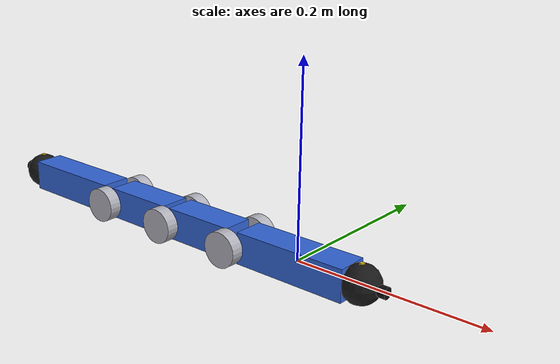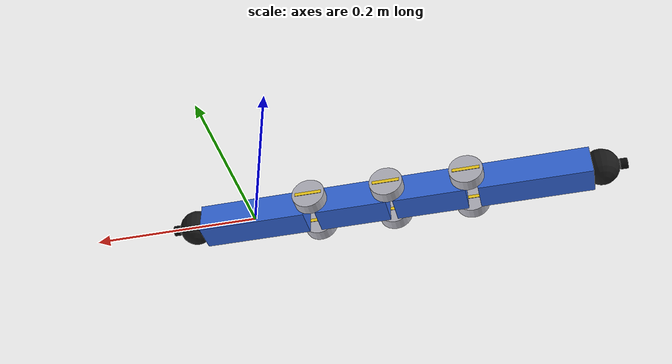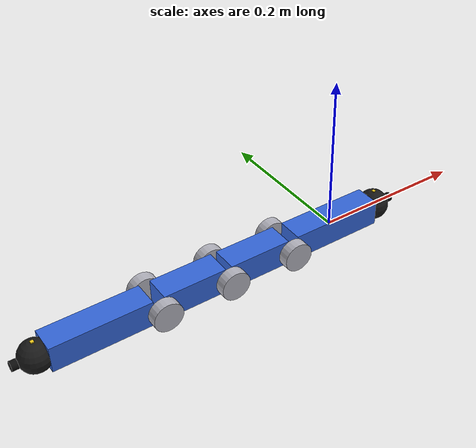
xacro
<?xml version="1.0"?>
<robot name="airo71" xmlns:xacro="http://www.ros.org/wiki/xacro">
  <xacro:arg name="pipe_inner_d" default="0.1008"/>
  <xacro:arg name="params_file" default=""/>
  <xacro:arg name="suspension" default="all"/>
  <xacro:include filename="$(find pipe_robot_sim)/models/common/common.xacro"/>

  <!-- ===== 치수 ===== -->
  <xacro:property name="Lm" value="0.090"/>        <!-- 가운데 링크 2개: 관절 ~ 관절 (논문 Fig.7 L) -->
  <xacro:property name="Le" value="0.145"/>        <!-- 끝 링크: 관절 ~ 끝 바퀴 중심. 전장 2(Le + re) + 2 Lm = 0.51 m -->
  <xacro:property name="bw" value="0.034"/>        <!-- 몸통 단면 (추정) -->
  <xacro:property name="ro" value="0.019"/>        <!-- 옴니휠 반경 (Ø38) -->
  <xacro:property name="o_w" value="0.014"/>       <!-- 옴니휠 폭 (추정) -->
  <xacro:property name="yo" value="${bw/2 + o_w/2 + 0.002}"/>
  <xacro:property name="re" value="0.020"/>        <!-- 끝 반구형 바퀴 반경 (추정) -->

  <!-- 질량 (총 1.57 kg). 옴니휠 6 x 30 g, 끝 바퀴 2 x 30 g, 굴림 포크 2 x 20 g, 끝 링크 2 x 400 g (굴림 모터·카메라·회로),
       가운데 링크 2 x 235 g (구동 모터·능동 관절 모터·기어) -->
  <xacro:property name="m_end" value="0.40"/>
  <xacro:property name="m_mid" value="0.235"/>
  <xacro:property name="m_omni" value="0.030"/>    <!-- Nexus 38 mm 알루미늄 더블 (추정) -->
  <xacro:property name="m_fork" value="0.02"/>
  <xacro:property name="m_endwheel" value="0.03"/>

  <!-- 관절 -->
  <xacro:arg name="j2_torque" default="1.32"/>
  <xacro:property name="j2_torque" value="$(arg j2_torque)"/>   <!-- 논문 엘보 시험값 (duty 25 %). 미끄러우면 2.55 -->
  <xacro:arg name="spring_k" default="0.58"/>   <!-- AIRo-2.2 토션 스프링 0.0102 N·m/deg (JRM 2019) -->
  <xacro:arg name="end_roll" default="true"/>      <!-- 비교 시험용: false = 굴림 관절 고정 -->
  <xacro:arg name="spring_as_servo" default="false"/>   <!-- 비교 시험용: true = j1, j3 를 스프링 대신 토크 한계 서보로 -->
  <xacro:property name="spring_k" value="$(arg spring_k)"/>     <!-- [N·m/rad] 추정 -->
  <xacro:property name="spring_ref" value="2.0"/>   <!-- 스프링 자유각 [rad] (j1, j3 는 -). 4 in 관에서 작동각 약 1.2 rad -> 약 0.8 N·m 로 벽을 누름 -->
  <xacro:arg name="joint_lim" default="1.9"/>
  <xacro:property name="joint_lim" value="$(arg joint_lim)"/>

  <xacro:property name="mu_omni" value="0.7"/>
  <xacro:arg name="mu_end" default="0.7"/>
  <xacro:property name="mu_end" value="$(arg mu_end)"/>

  <!-- 바퀴 모터 (축 하나 = 옴니휠 한 쌍, 시뮬은 바퀴마다 반씩): 무부하 0.088 / 0.019 = 4.6 rad/s,
       최대 견인력 728 N / 3 축 x 0.019 m = 4.6 N·m -> 바퀴당 스톨 2.3 N·m. 감쇠 = 스톨 / 무부하 (robot.yaml 과 같게) -->
  <xacro:property name="wheel_damping" value="${2.3/4.6}"/>
  <xacro:property name="roll_damping" value="${2.3/4.6}"/>   <!-- 굴림 바퀴도 같은 모터·감속기 (논문) -->

  <material name="body_blue"><color rgba="0.2 0.4 0.85 1"/></material>
  <material name="cam_black"><color rgba="0.05 0.05 0.05 1"/></material>
  <material name="motor_grey"><color rgba="0.55 0.55 0.6 1"/></material>
  <material name="wheel_black"><color rgba="0.1 0.1 0.1 1"/></material>
  <material name="omni_grey"><color rgba="0.7 0.7 0.74 1"/></material>
  <material name="mark_yellow"><color rgba="0.95 0.8 0.1 1"/></material>

  <!-- 끝 링크 충돌체: 캡슐 (원통 + 양 끝 구). 박스는 R61 엘보 안쪽 모서리(반경 10.6 mm)에 모서리가 걸려 머리가 못 꺾였음 (2026-10-22) -->
  <xacro:arg name="end_col_r" default="${bw/2}"/>   <!-- 비교 시험용: 끝 링크 충돌 반경 -->
  <xacro:macro name="end_col" params="cx">
    <xacro:property name="cr" value="$(arg end_col_r)"/>
    <xacro:property name="cl" value="${Le - re - 2*ro - 2*cr}"/>
    <collision>
      <origin xyz="${cx} 0 0" rpy="0 ${pi/2} 0"/>
      <geometry><cylinder radius="${cr}" length="${cl}"/></geometry>
    </collision>
    <collision><origin xyz="${cx + cl/2} 0 0"/><geometry><sphere radius="${cr}"/></geometry></collision>
    <collision><origin xyz="${cx - cl/2} 0 0"/><geometry><sphere radius="${cr}"/></geometry></collision>
  </xacro:macro>

  <!-- ===== 링크 1 (base_link, 앞) ===== -->
  <link name="base_link">
    <visual>
      <origin xyz="0 0 0" rpy="0 0 0"/>
      <geometry><box size="${Le - re} ${bw} ${bw}"/></geometry>
      <material name="body_blue"/>
    </visual>
    <xacro:end_col cx="0"/>
    <visual>   <!-- NTSC 카메라 (앞 끝 바퀴 앞) -->
      <origin xyz="${Le/2 + re + 0.004} 0 0" rpy="0 ${pi/2} 0"/>
      <geometry><cylinder radius="0.006" length="0.008"/></geometry>
      <material name="cam_black"/>
    </visual>
    <xacro:inertial_box m="${m_end}" x="${Le}" y="${bw}" z="${bw}"/>
  </link>

  <xacro:property name="mu_end_axial" value="0.05"/>
  <xacro:macro name="end_wheel" params="prefix parent x">
    <joint name="${prefix}_roll_joint" type="${'continuous' if '$(arg end_roll)' == 'true' else 'fixed'}">
      <parent link="${parent}"/>
      <child link="${prefix}_wheel"/>
      <origin xyz="${x} 0 0" rpy="0 0 0"/>
      <axis xyz="1 0 0"/>
      <dynamics damping="${roll_damping}" friction="0"/>
    </joint>
    <link name="${prefix}_wheel">
      <visual><geometry><sphere radius="${re}"/></geometry><material name="wheel_black"/></visual>
      <visual><origin xyz="0 0 ${re}" rpy="0 0 0"/><geometry><box size="0.004 0.004 0.002"/></geometry>
        <material name="mark_yellow"/></visual>
      <collision><geometry><sphere radius="${re}"/></geometry></collision>
      <xacro:inertial_sphere m="${m_endwheel + m_fork}" r="${re}"/>
    </link>
    <xacro:arg name="end_fdir" default="x"/>   <!-- 비교 시험용: none = 등방 마찰 mu_end_axial -->
    <gazebo reference="${prefix}_wheel">
      <mu1>${mu_end_axial}</mu1>
      <xacro:if value="${'$(arg end_fdir)' == 'x'}"><mu2>${mu_end}</mu2><fdir1>1 0 0</fdir1></xacro:if>
      <xacro:if value="${'$(arg end_fdir)' != 'x'}"><mu2>${mu_end_axial}</mu2></xacro:if>
    </gazebo>
    <xacro:if value="$(arg end_roll)"><xacro:joint_force joint="${prefix}_roll_joint"/></xacro:if>
  </xacro:macro>

  <xacro:arg name="omni_shape" default="cylinder"/>
  <xacro:macro name="omni" params="name parent x y spin">
    <joint name="${name}_joint" type="continuous">
      <parent link="${parent}"/>
      <child link="${name}"/>
      <origin xyz="${x} ${y} 0" rpy="0 0 0"/>
      <axis xyz="0 ${spin} 0"/>
      <dynamics damping="${wheel_damping}" friction="0"/>
    </joint>
    <link name="${name}">
      <visual><origin xyz="0 0 0" rpy="${pi/2} 0 0"/><geometry><cylinder radius="${ro}" length="${o_w}"/></geometry>
        <material name="omni_grey"/></visual>
      <visual><origin xyz="0 ${o_w/2} 0" rpy="${pi/2} 0 0"/><geometry><box size="${1.6*ro} 0.004 0.001"/></geometry>
        <material name="mark_yellow"/></visual>
      <collision>
        <xacro:if value="${'$(arg omni_shape)' == 'cylinder'}">
          <origin xyz="0 0 0" rpy="${pi/2} 0 0"/><geometry><cylinder radius="${ro}" length="${o_w}"/></geometry>
        </xacro:if>
        <xacro:if value="${'$(arg omni_shape)' != 'cylinder'}"><geometry><sphere radius="${ro}"/></geometry></xacro:if>
      </collision>
      <xacro:inertial_cyl m="${m_omni}" r="${ro}" l="${o_w}" rpy="${pi/2} 0 0"/>
    </link>
    <gazebo reference="${name}">
      <xacro:arg name="omni_mu1" default="0.0"/>   <!-- 비교 시험용: 0.7 = 등방 마찰 (롤러 효과 없음) -->
      <mu1>$(arg omni_mu1)</mu1>
      <mu2>${mu_omni}</mu2>
      <!-- DART 는 fdir1 을 충돌체 좌표로 읽음: 원통 충돌체는 x 로 90° 돌려서 바퀴축(링크 y) = 충돌체 z -->
      <xacro:if value="${'$(arg omni_shape)' == 'cylinder'}"><fdir1>0 1 0</fdir1></xacro:if>
      <xacro:if value="${'$(arg omni_shape)' != 'cylinder'}"><fdir1>0 1 0</fdir1></xacro:if>
    </gazebo>
    <xacro:joint_force joint="${name}_joint"/>
  </xacro:macro>

  <!-- 관절 + 그 자리 옴니휠 한 쌍 (옴니휠은 앞쪽 링크에 붙음). spin -1 = 위 벽에 닿는 관절 (j1, j3) -->
  <xacro:macro name="joint_with_omni" params="jname parent child x spin">
    <xacro:omni name="${jname}_left_omni" parent="${parent}" x="${x}" y="${yo}" spin="${spin}"/>
    <xacro:omni name="${jname}_right_omni" parent="${parent}" x="${x}" y="${-yo}" spin="${spin}"/>
    <joint name="${jname}_joint" type="revolute">
      <parent link="${parent}"/>
      <child link="${child}"/>
      <origin xyz="${x} 0 0" rpy="0 0 0"/>
      <axis xyz="0 1 0"/>
      <limit lower="${-joint_lim}" upper="${joint_lim}" effort="12.32" velocity="3.0"/>
      <dynamics damping="0.05" friction="0"/>
    </joint>
  </xacro:macro>

  <xacro:macro name="mid_link" params="name">
    <link name="${name}">
      <visual>
        <origin xyz="${-Lm/2} 0 0" rpy="0 0 0"/>
        <geometry><box size="${Lm - 0.008} ${bw} ${bw}"/></geometry>
        <material name="body_blue"/>
      </visual>
      <collision>
        <origin xyz="${-Lm/2} 0 0" rpy="0 0 0"/>
        <geometry><box size="${Lm - 2*ro} ${bw} ${bw}"/></geometry>
      </collision>
      <xacro:inertial_box m="${m_mid}" x="${Lm}" y="${bw}" z="${bw}" xyz="${-Lm/2} 0 0"/>
    </link>
  </xacro:macro>

  <!-- ===== 연결 ===== -->
  <xacro:end_wheel prefix="front" parent="base_link" x="${Le/2}"/>
  <xacro:joint_with_omni jname="j1" parent="base_link" child="link2" x="${-Le/2}" spin="-1"/>
  <xacro:if value="${'$(arg spring_as_servo)' != 'true'}"><xacro:joint_spring joint="j1_joint" k="${spring_k}" ref="${-spring_ref}"/></xacro:if>
  <xacro:if value="$(arg spring_as_servo)"><xacro:joint_servo joint="j1_joint" p="1.0" d="0" tmax="1.0"/></xacro:if>
  <xacro:mid_link name="link2"/>
  <xacro:joint_with_omni jname="j2" parent="link2" child="link3" x="${-Lm}" spin="1"/>
  <!-- 능동 관절: 목표각을 벽 너머(+2 rad)로 주고 토크 한계로 누름 = 논문의 PWM 토크 제한 + 위치 제어 -->
  <xacro:joint_servo joint="j2_joint" p="20" d="0" tmax="${j2_torque}"/>
  <xacro:mid_link name="link3"/>
  <xacro:joint_with_omni jname="j3" parent="link3" child="link4" x="${-Lm}" spin="-1"/>
  <xacro:if value="${'$(arg spring_as_servo)' != 'true'}"><xacro:joint_spring joint="j3_joint" k="${spring_k}" ref="${-spring_ref}"/></xacro:if>
  <xacro:if value="$(arg spring_as_servo)"><xacro:joint_servo joint="j3_joint" p="1.0" d="0" tmax="1.0"/></xacro:if>

  <link name="link4">
    <visual>
      <origin xyz="${-Le/2} 0 0" rpy="0 0 0"/>
      <geometry><box size="${Le - re} ${bw} ${bw}"/></geometry>
      <material name="body_blue"/>
    </visual>
    <xacro:end_col cx="${-Le/2}"/>
    <visual>   <!-- 뒤 카메라 -->
      <origin xyz="${-Le - re - 0.004} 0 0" rpy="0 ${pi/2} 0"/>
      <geometry><cylinder radius="0.006" length="0.008"/></geometry>
      <material name="cam_black"/>
    </visual>
    <xacro:inertial_box m="${m_end}" x="${Le}" y="${bw}" z="${bw}" xyz="${-Le/2} 0 0"/>
  </link>
  <xacro:end_wheel prefix="rear" parent="link4" x="${-Le}"/>

  <!-- IMU 는 논문에 없음 (굴림 제어·위치추정용으로 추가) -->
  <xacro:sim_common imu_parent="link2"/>
</robot>

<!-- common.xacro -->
<!-- 모델 공통 매크로: 관성, 옴니휠(롤러), 시뮬 플러그인 (docs/02 규약)
     단위 m, kg, rad. 함수는 sin, cos, asin, atan2, sqrt, radians, pi 만 씀 (VS Code URDF Visualizer와 xacro 둘 다 지원) -->
<robot xmlns:xacro="http://www.ros.org/wiki/xacro">

  <!-- ===== 관성 (아주 작은 값은 1e-8을 더해 0이 되지 않게) ===== -->
  <xacro:macro name="inertial_box" params="m x y z xyz:='0 0 0' rpy:='0 0 0'">
    <inertial>
      <origin xyz="${xyz}" rpy="${rpy}"/>
      <mass value="${m}"/>
      <inertia ixx="${m*(y*y+z*z)/12 + 1e-8}" ixy="0" ixz="0" iyy="${m*(x*x+z*z)/12 + 1e-8}" iyz="0"
               izz="${m*(x*x+y*y)/12 + 1e-8}"/>
    </inertial>
  </xacro:macro>

  <!-- 원기둥: 축은 origin 회전 후의 z -->
  <xacro:macro name="inertial_cyl" params="m r l xyz:='0 0 0' rpy:='0 0 0'">
    <inertial>
      <origin xyz="${xyz}" rpy="${rpy}"/>
      <mass value="${m}"/>
      <inertia ixx="${m*(3*r*r+l*l)/12 + 1e-8}" ixy="0" ixz="0" iyy="${m*(3*r*r+l*l)/12 + 1e-8}" iyz="0"
               izz="${m*r*r/2 + 1e-8}"/>
    </inertial>
  </xacro:macro>

  <xacro:macro name="inertial_sphere" params="m r xyz:='0 0 0'">
    <inertial>
      <origin xyz="${xyz}" rpy="0 0 0"/>
      <mass value="${m}"/>
      <inertia ixx="${0.4*m*r*r + 1e-8}" ixy="0" ixz="0" iyy="${0.4*m*r*r + 1e-8}" iyz="0" izz="${0.4*m*r*r + 1e-8}"/>
    </inertial>
  </xacro:macro>

  <!-- spin = -1: 위 벽에 닿는 바퀴 (축을 뒤집어 같은 + 속도 명령에 앞으로 감) -->
  <xacro:macro name="omni_wheel" params="name parent xyz R width n rr row hub_mass roller_mass mu damping spin:=1">
    <joint name="${name}_joint" type="continuous">
      <parent link="${parent}"/>
      <child link="${name}"/>
      <origin xyz="${xyz}" rpy="0 0 0"/>
      <axis xyz="0 ${spin} 0"/>
      <dynamics damping="${damping}" friction="0"/>
    </joint>
    <link name="${name}">
      <visual>
        <origin xyz="0 0 0" rpy="${pi/2} 0 0"/>
        <geometry><cylinder radius="${R - 1.6*rr}" length="${width*0.8}"/></geometry>
        <material name="omni_hub"><color rgba="0.75 0.75 0.78 1"/></material>
      </visual>
      <xacro:inertial_cyl m="${hub_mass}" r="${R - rr}" l="${width}" rpy="${pi/2} 0 0"/>
    </link>
    <xacro:omni_rollers hub="${name}" n="${n}" i="0" R="${R}" rr="${rr}" y="${-row}" phase="0"
                        m="${roller_mass}" mu="${mu}" tag="a"/>
    <xacro:omni_rollers hub="${name}" n="${n}" i="0" R="${R}" rr="${rr}" y="${row}" phase="${pi/n}"
                        m="${roller_mass}" mu="${mu}" tag="b"/>
  </xacro:macro>

  <!-- 롤러 한 줄 (재귀). 롤러 중심은 허브 중심에서 R-rr, 축은 접선 (-sin, 0, cos) -->
  <xacro:macro name="omni_rollers" params="hub n i R rr y phase m mu tag">
    <xacro:if value="${i &lt; n}">
      <joint name="${hub}_${tag}${i}_joint" type="continuous">
        <parent link="${hub}"/>
        <child link="${hub}_${tag}${i}"/>
        <origin xyz="${(R-rr)*cos(2*pi*i/n + phase)} ${y} ${(R-rr)*sin(2*pi*i/n + phase)}" rpy="0 0 0"/>
        <axis xyz="${-sin(2*pi*i/n + phase)} 0 ${cos(2*pi*i/n + phase)}"/>
        <dynamics damping="0.00001" friction="0"/>
      </joint>
      <link name="${hub}_${tag}${i}">
        <visual>
          <origin xyz="0 0 0" rpy="0 ${-(2*pi*i/n + phase)} 0"/>
          <geometry><cylinder radius="${rr}" length="${1.5*rr}"/></geometry>
          <material name="omni_roller"><color rgba="0.25 0.25 0.25 1"/></material>
        </visual>
        <collision>
          <geometry><sphere radius="${rr}"/></geometry>
        </collision>
        <xacro:inertial_sphere m="${m}" r="${rr}"/>
      </link>
      <gazebo reference="${hub}_${tag}${i}">
        <mu1>${mu}</mu1>
        <mu2>${mu}</mu2>
      </gazebo>
      <xacro:omni_rollers hub="${hub}" n="${n}" i="${i+1}" R="${R}" rr="${rr}" y="${y}" phase="${phase}"
                          m="${m}" mu="${mu}" tag="${tag}"/>
    </xacro:if>
  </xacro:macro>

  <!-- ===== 시뮬 플러그인 (docs/02 규약) ===== -->

  <!-- 관절 상태, 정답 위치, IMU (imu_link 를 parent 에 고정) -->
  <xacro:macro name="sim_common" params="imu_parent imu_xyz:='0 0 0'">
    <joint name="imu_joint" type="fixed">
      <parent link="${imu_parent}"/>
      <child link="imu_link"/>
      <origin xyz="${imu_xyz}" rpy="0 0 0"/>
    </joint>
    <link name="imu_link"/>
    <gazebo reference="imu_link">
      <sensor name="imu" type="imu">
        <always_on>1</always_on>
        <update_rate>200</update_rate>
        <topic>/imu</topic>
        <imu>
          <!-- MPU6050 수준 노이즈 (docs/08) -->
          <angular_velocity>
            <x><noise type="gaussian"><mean>0</mean><stddev>0.0012</stddev></noise></x>
            <y><noise type="gaussian"><mean>0</mean><stddev>0.0012</stddev></noise></y>
            <z><noise type="gaussian"><mean>0</mean><stddev>0.0012</stddev></noise></z>
          </angular_velocity>
          <linear_acceleration>
            <x><noise type="gaussian"><mean>0</mean><stddev>0.055</stddev></noise></x>
            <y><noise type="gaussian"><mean>0</mean><stddev>0.055</stddev></noise></y>
            <z><noise type="gaussian"><mean>0</mean><stddev>0.055</stddev></noise></z>
          </linear_acceleration>
        </imu>
      </sensor>
    </gazebo>
    <gazebo>
      <plugin filename="ignition-gazebo-joint-state-publisher-system"
              name="ignition::gazebo::systems::JointStatePublisher">
        <topic>/joint_states</topic>
      </plugin>
      <plugin filename="ignition-gazebo-odometry-publisher-system"
              name="ignition::gazebo::systems::OdometryPublisher">
        <odom_frame>world</odom_frame>
        <robot_base_frame>base_link</robot_base_frame>
        <odom_topic>/ground_truth/odom</odom_topic>
        <odom_publish_frequency>100</odom_publish_frequency>
        <dimensions>3</dimensions>
      </plugin>
    </gazebo>
  </xacro:macro>

  <xacro:macro name="joint_force" params="joint">
    <gazebo>
      <plugin filename="ignition-gazebo-apply-joint-force-system"
              name="ignition::gazebo::systems::ApplyJointForce">
        <joint_name>${joint}</joint_name>
      </plugin>
    </gazebo>
  </xacro:macro>

  <xacro:macro name="joint_servo" params="joint p d tmax">
    <gazebo>
      <plugin filename="ignition-gazebo-joint-position-controller-system"
              name="ignition::gazebo::systems::JointPositionController">
        <joint_name>${joint}</joint_name>
        <topic>/servo/${joint}</topic>
        <p_gain>${p}</p_gain>
        <i_gain>0</i_gain>
        <d_gain>${d}</d_gain>
        <cmd_max>${tmax}</cmd_max>
        <cmd_min>${-tmax}</cmd_min>
      </plugin>
    </gazebo>
  </xacro:macro>

  <!-- 토션 스프링 관절: 토크 = -k (q - ref) -->
  <xacro:macro name="joint_spring" params="joint k ref">
    <gazebo reference="${joint}">
      <springReference>${ref}</springReference>
      <springStiffness>${k}</springStiffness>
      <implicitSpringDamper>true</implicitSpringDamper>
    </gazebo>
  </xacro:macro>

  <xacro:macro name="friction" params="link mu">
    <gazebo reference="${link}">
      <mu1>${mu}</mu1>
      <mu2>${mu}</mu2>
    </gazebo>
  </xacro:macro>

</robot>
